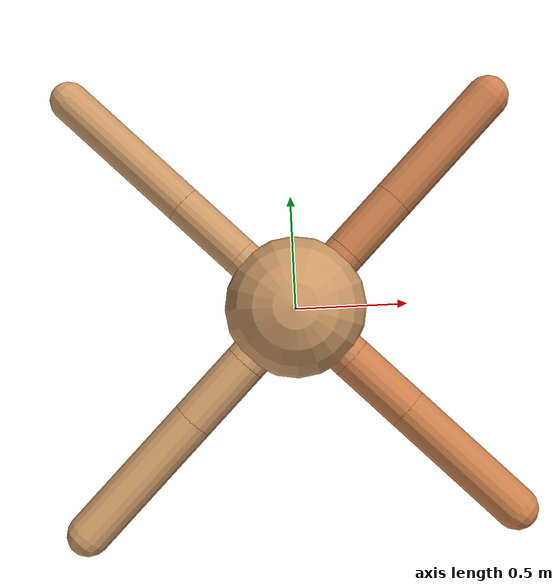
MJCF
<?xml version="1.0" ?>
<mujoco model="ant">

	<compiler angle="degree" coordinate="local" inertiafromgeom="true"/>

	<option integrator="RK4" timestep="0.01"/>

	<custom>

		<numeric data="0.0 0.0 0.55 1.0 0.0 0.0 0.0 0.0 1.0 0.0 -1.0 0.0 -1.0 0.0 1.0" name="init_qpos"/>

	</custom>

	<default>

		<joint armature="1" damping="1" limited="true"/>

		<geom conaffinity="0" condim="3" density="5.0" friction="1.5 0.1 0.1" margin="0.01" rgba="0.8 0.6 0.4 1"/>

	</default>

	<worldbody>

		<body name="torso" pos="0 0 0.75">

			<geom name="torso_geom" pos="0 0 0" size="0.2668452464677027" type="sphere"/>

			<!--joint armature="0" damping="0" limited="false" margin="0.01" name="root" pos="0 0 0" type="free"/-->

			<body name="front_left_leg" pos="0 0 0">

				<geom fromto="0 0 0 0.2 0.2 0" name="aux_1_geom" size="0.08064452130243818" type="capsule" rgba=".8 .5 .3 1"/>

				<body name="aux_1" pos="0.2 0.2 0">

					<joint axis="0 0 1" name="hip_1" pos="0.0 0.0 0.0" range="-40 40" type="hinge"/>

					<geom fromto="0 0 0 0.18469690739375474 0.18469690739375474 0" name="left_leg_geom" size="0.08064452130243818" type="capsule" rgba=".8 .5 .3 1"/>

					<body pos="0.18469690739375474 0.18469690739375474 0" name="front_left_foot">

						<joint axis="-1 1 0" name="ankle_1" pos="0.0 0.0 0.0" range="30 100" type="hinge"/>

						<geom fromto="0 0 0 0.3693938147875095 0.3693938147875095 0" name="left_ankle_geom" size="0.08064452130243818" type="capsule" rgba=".8 .5 .3 1"/>

					</body>

				</body>

			</body>

			<body name="front_right_leg" pos="0 0 0">

				<geom fromto="0 0 0 -0.2 0.2 0" name="aux_2_geom" size="0.07398978002556392" type="capsule"/>

				<body name="aux_2" pos="-0.2 0.2 0">

					<joint axis="0 0 1" name="hip_2" pos="0.0 0.0 0.0" range="-40 40" type="hinge"/>

					<geom fromto="0 0 0 -0.20344386756805846 0.20344386756805846 0" name="right_leg_geom" size="0.07398978002556392" type="capsule"/>

					<body pos="-0.20344386756805846 0.20344386756805846 0" name="front_right_foot">

						<joint axis="1 1 0" name="ankle_2" pos="0.0 0.0 0.0" range="-100 -30" type="hinge"/>

						<geom fromto="0 0 0 -0.4068877351361169 0.4068877351361169 0" name="right_ankle_geom" size="0.07398978002556392" type="capsule"/>

					</body>

				</body>

			</body>

			<body name="left_back_leg" pos="0 0 0">

				<geom fromto="0 0 0 -0.2 -0.2 0" name="aux_3_geom" size="0.08343841843770917" type="capsule"/>

				<body name="aux_3" pos="-0.2 -0.2 0">

					<joint axis="0 0 1" name="hip_3" pos="0.0 0.0 0.0" range="-40 40" type="hinge"/>

					<geom fromto="0 0 0 -0.20480369290526002 -0.20480369290526002 0" name="back_leg_geom" size="0.08343841843770917" type="capsule"/>

					<body pos="-0.20480369290526002 -0.20480369290526002 0" name="left_back_foot">

						<joint axis="-1 1 0" name="ankle_3" pos="0.0 0.0 0.0" range="-100 -30" type="hinge"/>

						<geom fromto="0 0 0 -0.40960738581052003 -0.40960738581052003 0" name="third_ankle_geom" size="0.08343841843770917" type="capsule"/>

					</body>

				</body>

			</body>

			<body name="right_back_leg" pos="0 0 0">

				<geom fromto="0 0 0 0.2 -0.2 0" name="aux_4_geom" size="0.08332313530831925" type="capsule" rgba=".8 .5 .3 1"/>

				<body name="aux_4" pos="0.2 -0.2 0">

					<joint axis="0 0 1" name="hip_4" pos="0.0 0.0 0.0" range="-40 40" type="hinge"/>

					<geom fromto="0 0 0 0.19688021967460934 -0.19688021967460934 0" name="rightback_leg_geom" size="0.08332313530831925" type="capsule" rgba=".8 .5 .3 1"/>

					<body pos="0.19688021967460934 -0.19688021967460934 0" name="right_back_foot">

						<joint axis="1 1 0" name="ankle_4" pos="0.0 0.0 0.0" range="30 100" type="hinge"/>

						<geom fromto="0 0 0 0.39376043934921867 -0.39376043934921867 0" name="fourth_ankle_geom" size="0.08332313530831925" type="capsule" rgba=".8 .5 .3 1"/>

					</body>

				</body>

			</body>

		</body>

	</worldbody>

	<actuator>

		<motor ctrllimited="true" ctrlrange="-1.0 1.0" joint="hip_4" gear="150"/>

		<motor ctrllimited="true" ctrlrange="-1.0 1.0" joint="ankle_4" gear="150"/>

		<motor ctrllimited="true" ctrlrange="-1.0 1.0" joint="hip_1" gear="150"/>

		<motor ctrllimited="true" ctrlrange="-1.0 1.0" joint="ankle_1" gear="150"/>

		<motor ctrllimited="true" ctrlrange="-1.0 1.0" joint="hip_2" gear="150"/>

		<motor ctrllimited="true" ctrlrange="-1.0 1.0" joint="ankle_2" gear="150"/>

		<motor ctrllimited="true" ctrlrange="-1.0 1.0" joint="hip_3" gear="150"/>

		<motor ctrllimited="true" ctrlrange="-1.0 1.0" joint="ankle_3" gear="150"/>

	</actuator>

</mujoco>
